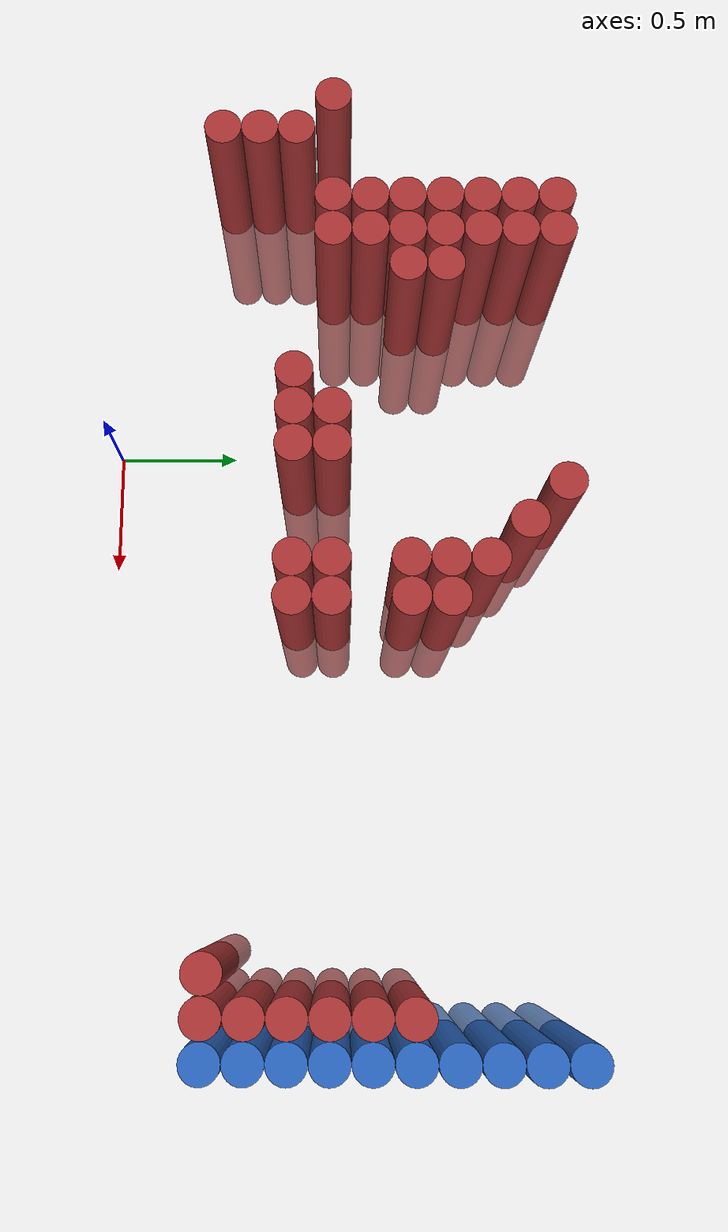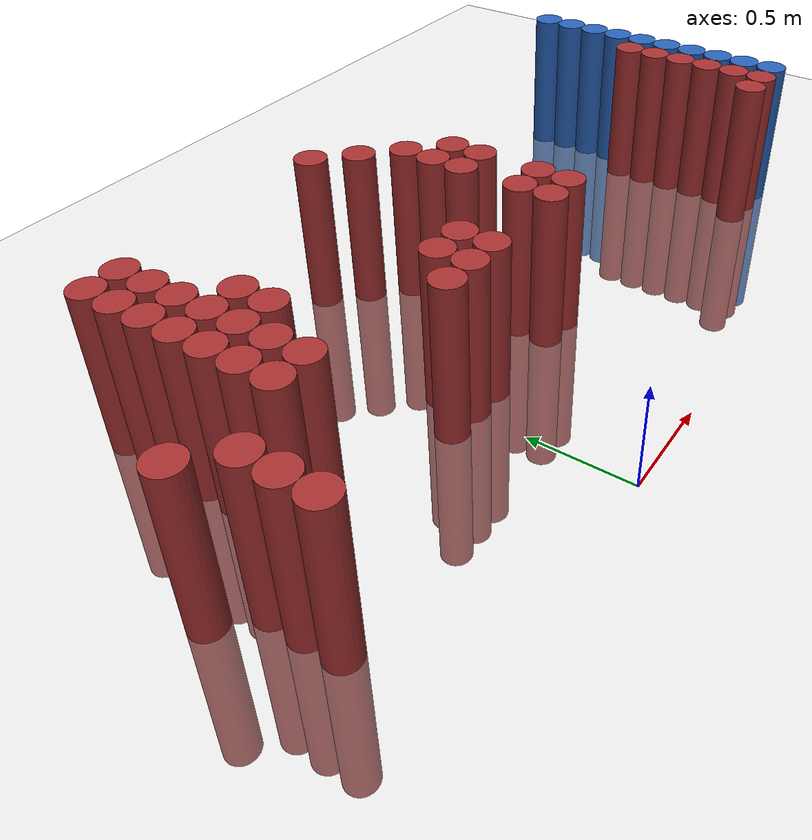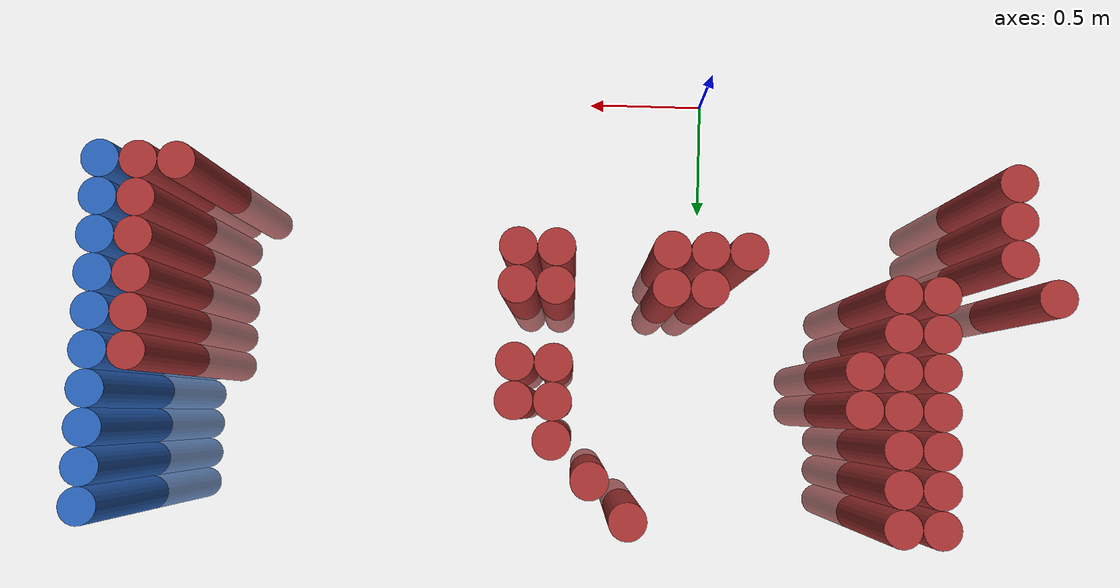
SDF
<sdf version="1.6">
 <world name="default">
  <model name="ground_plane">
   <static>1</static>
   <link name="link">
    <collision name="collision">
     <geometry><plane><normal>0 0 1</normal><size>100 100</size></plane></geometry>
     <surface><friction><ode><mu>100</mu><mu2>50</mu2></ode></friction></surface>
    </collision>
    <visual name="visual">
     <cast_shadows>0</cast_shadows>
     <geometry><plane><normal>0 0 1</normal><size>100 100</size></plane></geometry>
     <material>
      <script><uri>file://media/materials/scripts/gazebo.material</uri><name>Gazebo/Grey</name></script>
     </material>
    </visual>
   </link>
  </model>
  <model name="unit_cylinder_157">
   <static>1</static>
   <pose>-1.325000 0.925000 0.000000 0.000000 0.000000 0.000000</pose>
   <link name="link">
    <inertial>
     <mass>1</mass>
     <inertia><ixx>0.145833</ixx><ixy>0</ixy><ixz>0</ixz><iyy>0.145833</iyy><iyz>0</iyz><izz>0.125</izz></inertia>
    </inertial>
    <collision name="collision">
     <geometry><cylinder><radius>0.075000</radius><length>1.5</length></cylinder></geometry>
    </collision>
    <visual name="visual">
     <geometry><cylinder><radius>0.075000</radius><length>1.5</length></cylinder></geometry>
     <material>
      <ambient>0.648000 0.192000 0.192000 1</ambient>
      <diffuse>0.648000 0.192000 0.192000 1</diffuse>
     </material>
     <material>
      <script><name>Gazebo/Grey</name><uri>file://media/materials/scripts/gazebo.material</uri></script>
     </material>
    </visual>
   </link>
  </model>
  <model name="unit_cylinder_161">
   <static>1</static>
   <pose>-1.175000 0.475000 0.000000 0.000000 0.000000 0.000000</pose>
   <link name="link">
    <inertial>
     <mass>1</mass>
     <inertia><ixx>0.145833</ixx><ixy>0</ixy><ixz>0</ixz><iyy>0.145833</iyy><iyz>0</iyz><izz>0.125</izz></inertia>
    </inertial>
    <collision name="collision">
     <geometry><cylinder><radius>0.075000</radius><length>1.5</length></cylinder></geometry>
    </collision>
    <visual name="visual">
     <geometry><cylinder><radius>0.075000</radius><length>1.5</length></cylinder></geometry>
     <material>
      <ambient>0.648000 0.192000 0.192000 1</ambient>
      <diffuse>0.648000 0.192000 0.192000 1</diffuse>
     </material>
     <material>
      <script><name>Gazebo/Grey</name><uri>file://media/materials/scripts/gazebo.material</uri></script>
     </material>
    </visual>
   </link>
  </model>
  <model name="unit_cylinder_162">
   <static>1</static>
   <pose>-1.175000 0.625000 0.000000 0.000000 0.000000 0.000000</pose>
   <link name="link">
    <inertial>
     <mass>1</mass>
     <inertia><ixx>0.145833</ixx><ixy>0</ixy><ixz>0</ixz><iyy>0.145833</iyy><iyz>0</iyz><izz>0.125</izz></inertia>
    </inertial>
    <collision name="collision">
     <geometry><cylinder><radius>0.075000</radius><length>1.5</length></cylinder></geometry>
    </collision>
    <visual name="visual">
     <geometry><cylinder><radius>0.075000</radius><length>1.5</length></cylinder></geometry>
     <material>
      <ambient>0.648000 0.192000 0.192000 1</ambient>
      <diffuse>0.648000 0.192000 0.192000 1</diffuse>
     </material>
     <material>
      <script><name>Gazebo/Grey</name><uri>file://media/materials/scripts/gazebo.material</uri></script>
     </material>
    </visual>
   </link>
  </model>
  <model name="unit_cylinder_163">
   <static>1</static>
   <pose>-1.175000 0.775000 0.000000 0.000000 0.000000 0.000000</pose>
   <link name="link">
    <inertial>
     <mass>1</mass>
     <inertia><ixx>0.145833</ixx><ixy>0</ixy><ixz>0</ixz><iyy>0.145833</iyy><iyz>0</iyz><izz>0.125</izz></inertia>
    </inertial>
    <collision name="collision">
     <geometry><cylinder><radius>0.075000</radius><length>1.5</length></cylinder></geometry>
    </collision>
    <visual name="visual">
     <geometry><cylinder><radius>0.075000</radius><length>1.5</length></cylinder></geometry>
     <material>
      <ambient>0.648000 0.192000 0.192000 1</ambient>
      <diffuse>0.648000 0.192000 0.192000 1</diffuse>
     </material>
     <material>
      <script><name>Gazebo/Grey</name><uri>file://media/materials/scripts/gazebo.material</uri></script>
     </material>
    </visual>
   </link>
  </model>
  <model name="unit_cylinder_167">
   <static>1</static>
   <pose>-0.875000 0.925000 0.000000 0.000000 0.000000 0.000000</pose>
   <link name="link">
    <inertial>
     <mass>1</mass>
     <inertia><ixx>0.145833</ixx><ixy>0</ixy><ixz>0</ixz><iyy>0.145833</iyy><iyz>0</iyz><izz>0.125</izz></inertia>
    </inertial>
    <collision name="collision">
     <geometry><cylinder><radius>0.075000</radius><length>1.5</length></cylinder></geometry>
    </collision>
    <visual name="visual">
     <geometry><cylinder><radius>0.075000</radius><length>1.5</length></cylinder></geometry>
     <material>
      <ambient>0.648000 0.192000 0.192000 1</ambient>
      <diffuse>0.648000 0.192000 0.192000 1</diffuse>
     </material>
     <material>
      <script><name>Gazebo/Grey</name><uri>file://media/materials/scripts/gazebo.material</uri></script>
     </material>
    </visual>
   </link>
  </model>
  <model name="unit_cylinder_168">
   <static>1</static>
   <pose>-0.875000 1.075000 0.000000 0.000000 0.000000 0.000000</pose>
   <link name="link">
    <inertial>
     <mass>1</mass>
     <inertia><ixx>0.145833</ixx><ixy>0</ixy><ixz>0</ixz><iyy>0.145833</iyy><iyz>0</iyz><izz>0.125</izz></inertia>
    </inertial>
    <collision name="collision">
     <geometry><cylinder><radius>0.075000</radius><length>1.5</length></cylinder></geometry>
    </collision>
    <visual name="visual">
     <geometry><cylinder><radius>0.075000</radius><length>1.5</length></cylinder></geometry>
     <material>
      <ambient>0.648000 0.192000 0.192000 1</ambient>
      <diffuse>0.648000 0.192000 0.192000 1</diffuse>
     </material>
     <material>
      <script><name>Gazebo/Grey</name><uri>file://media/materials/scripts/gazebo.material</uri></script>
     </material>
    </visual>
   </link>
  </model>
  <model name="unit_cylinder_169">
   <static>1</static>
   <pose>-0.875000 1.225000 0.000000 0.000000 0.000000 0.000000</pose>
   <link name="link">
    <inertial>
     <mass>1</mass>
     <inertia><ixx>0.145833</ixx><ixy>0</ixy><ixz>0</ixz><iyy>0.145833</iyy><iyz>0</iyz><izz>0.125</izz></inertia>
    </inertial>
    <collision name="collision">
     <geometry><cylinder><radius>0.075000</radius><length>1.5</length></cylinder></geometry>
    </collision>
    <visual name="visual">
     <geometry><cylinder><radius>0.075000</radius><length>1.5</length></cylinder></geometry>
     <material>
      <ambient>0.648000 0.192000 0.192000 1</ambient>
      <diffuse>0.648000 0.192000 0.192000 1</diffuse>
     </material>
     <material>
      <script><name>Gazebo/Grey</name><uri>file://media/materials/scripts/gazebo.material</uri></script>
     </material>
    </visual>
   </link>
  </model>
  <model name="unit_cylinder_170">
   <static>1</static>
   <pose>-0.875000 1.375000 0.000000 0.000000 0.000000 0.000000</pose>
   <link name="link">
    <inertial>
     <mass>1</mass>
     <inertia><ixx>0.145833</ixx><ixy>0</ixy><ixz>0</ixz><iyy>0.145833</iyy><iyz>0</iyz><izz>0.125</izz></inertia>
    </inertial>
    <collision name="collision">
     <geometry><cylinder><radius>0.075000</radius><length>1.5</length></cylinder></geometry>
    </collision>
    <visual name="visual">
     <geometry><cylinder><radius>0.075000</radius><length>1.5</length></cylinder></geometry>
     <material>
      <ambient>0.648000 0.192000 0.192000 1</ambient>
      <diffuse>0.648000 0.192000 0.192000 1</diffuse>
     </material>
     <material>
      <script><name>Gazebo/Grey</name><uri>file://media/materials/scripts/gazebo.material</uri></script>
     </material>
    </visual>
   </link>
  </model>
  <model name="unit_cylinder_171">
   <static>1</static>
   <pose>-0.875000 1.525000 0.000000 0.000000 0.000000 0.000000</pose>
   <link name="link">
    <inertial>
     <mass>1</mass>
     <inertia><ixx>0.145833</ixx><ixy>0</ixy><ixz>0</ixz><iyy>0.145833</iyy><iyz>0</iyz><izz>0.125</izz></inertia>
    </inertial>
    <collision name="collision">
     <geometry><cylinder><radius>0.075000</radius><length>1.5</length></cylinder></geometry>
    </collision>
    <visual name="visual">
     <geometry><cylinder><radius>0.075000</radius><length>1.5</length></cylinder></geometry>
     <material>
      <ambient>0.648000 0.192000 0.192000 1</ambient>
      <diffuse>0.648000 0.192000 0.192000 1</diffuse>
     </material>
     <material>
      <script><name>Gazebo/Grey</name><uri>file://media/materials/scripts/gazebo.material</uri></script>
     </material>
    </visual>
   </link>
  </model>
  <model name="unit_cylinder_172">
   <static>1</static>
   <pose>-0.875000 1.675000 0.000000 0.000000 0.000000 0.000000</pose>
   <link name="link">
    <inertial>
     <mass>1</mass>
     <inertia><ixx>0.145833</ixx><ixy>0</ixy><ixz>0</ixz><iyy>0.145833</iyy><iyz>0</iyz><izz>0.125</izz></inertia>
    </inertial>
    <collision name="collision">
     <geometry><cylinder><radius>0.075000</radius><length>1.5</length></cylinder></geometry>
    </collision>
    <visual name="visual">
     <geometry><cylinder><radius>0.075000</radius><length>1.5</length></cylinder></geometry>
     <material>
      <ambient>0.648000 0.192000 0.192000 1</ambient>
      <diffuse>0.648000 0.192000 0.192000 1</diffuse>
     </material>
     <material>
      <script><name>Gazebo/Grey</name><uri>file://media/materials/scripts/gazebo.material</uri></script>
     </material>
    </visual>
   </link>
  </model>
  <model name="unit_cylinder_173">
   <static>1</static>
   <pose>-0.875000 1.825000 0.000000 0.000000 0.000000 0.000000</pose>
   <link name="link">
    <inertial>
     <mass>1</mass>
     <inertia><ixx>0.145833</ixx><ixy>0</ixy><ixz>0</ixz><iyy>0.145833</iyy><iyz>0</iyz><izz>0.125</izz></inertia>
    </inertial>
    <collision name="collision">
     <geometry><cylinder><radius>0.075000</radius><length>1.5</length></cylinder></geometry>
    </collision>
    <visual name="visual">
     <geometry><cylinder><radius>0.075000</radius><length>1.5</length></cylinder></geometry>
     <material>
      <ambient>0.648000 0.192000 0.192000 1</ambient>
      <diffuse>0.648000 0.192000 0.192000 1</diffuse>
     </material>
     <material>
      <script><name>Gazebo/Grey</name><uri>file://media/materials/scripts/gazebo.material</uri></script>
     </material>
    </visual>
   </link>
  </model>
  <model name="unit_cylinder_177">
   <static>1</static>
   <pose>-0.725000 0.925000 0.000000 0.000000 0.000000 0.000000</pose>
   <link name="link">
    <inertial>
     <mass>1</mass>
     <inertia><ixx>0.145833</ixx><ixy>0</ixy><ixz>0</ixz><iyy>0.145833</iyy><iyz>0</iyz><izz>0.125</izz></inertia>
    </inertial>
    <collision name="collision">
     <geometry><cylinder><radius>0.075000</radius><length>1.5</length></cylinder></geometry>
    </collision>
    <visual name="visual">
     <geometry><cylinder><radius>0.075000</radius><length>1.5</length></cylinder></geometry>
     <material>
      <ambient>0.648000 0.192000 0.192000 1</ambient>
      <diffuse>0.648000 0.192000 0.192000 1</diffuse>
     </material>
     <material>
      <script><name>Gazebo/Grey</name><uri>file://media/materials/scripts/gazebo.material</uri></script>
     </material>
    </visual>
   </link>
  </model>
  <model name="unit_cylinder_178">
   <static>1</static>
   <pose>-0.725000 1.075000 0.000000 0.000000 0.000000 0.000000</pose>
   <link name="link">
    <inertial>
     <mass>1</mass>
     <inertia><ixx>0.145833</ixx><ixy>0</ixy><ixz>0</ixz><iyy>0.145833</iyy><iyz>0</iyz><izz>0.125</izz></inertia>
    </inertial>
    <collision name="collision">
     <geometry><cylinder><radius>0.075000</radius><length>1.5</length></cylinder></geometry>
    </collision>
    <visual name="visual">
     <geometry><cylinder><radius>0.075000</radius><length>1.5</length></cylinder></geometry>
     <material>
      <ambient>0.648000 0.192000 0.192000 1</ambient>
      <diffuse>0.648000 0.192000 0.192000 1</diffuse>
     </material>
     <material>
      <script><name>Gazebo/Grey</name><uri>file://media/materials/scripts/gazebo.material</uri></script>
     </material>
    </visual>
   </link>
  </model>
  <model name="unit_cylinder_179">
   <static>1</static>
   <pose>-0.725000 1.225000 0.000000 0.000000 0.000000 0.000000</pose>
   <link name="link">
    <inertial>
     <mass>1</mass>
     <inertia><ixx>0.145833</ixx><ixy>0</ixy><ixz>0</ixz><iyy>0.145833</iyy><iyz>0</iyz><izz>0.125</izz></inertia>
    </inertial>
    <collision name="collision">
     <geometry><cylinder><radius>0.075000</radius><length>1.5</length></cylinder></geometry>
    </collision>
    <visual name="visual">
     <geometry><cylinder><radius>0.075000</radius><length>1.5</length></cylinder></geometry>
     <material>
      <ambient>0.648000 0.192000 0.192000 1</ambient>
      <diffuse>0.648000 0.192000 0.192000 1</diffuse>
     </material>
     <material>
      <script><name>Gazebo/Grey</name><uri>file://media/materials/scripts/gazebo.material</uri></script>
     </material>
    </visual>
   </link>
  </model>
  <model name="unit_cylinder_180">
   <static>1</static>
   <pose>-0.725000 1.375000 0.000000 0.000000 0.000000 0.000000</pose>
   <link name="link">
    <inertial>
     <mass>1</mass>
     <inertia><ixx>0.145833</ixx><ixy>0</ixy><ixz>0</ixz><iyy>0.145833</iyy><iyz>0</iyz><izz>0.125</izz></inertia>
    </inertial>
    <collision name="collision">
     <geometry><cylinder><radius>0.075000</radius><length>1.5</length></cylinder></geometry>
    </collision>
    <visual name="visual">
     <geometry><cylinder><radius>0.075000</radius><length>1.5</length></cylinder></geometry>
     <material>
      <ambient>0.648000 0.192000 0.192000 1</ambient>
      <diffuse>0.648000 0.192000 0.192000 1</diffuse>
     </material>
     <material>
      <script><name>Gazebo/Grey</name><uri>file://media/materials/scripts/gazebo.material</uri></script>
     </material>
    </visual>
   </link>
  </model>
  <model name="unit_cylinder_181">
   <static>1</static>
   <pose>-0.725000 1.525000 0.000000 0.000000 0.000000 0.000000</pose>
   <link name="link">
    <inertial>
     <mass>1</mass>
     <inertia><ixx>0.145833</ixx><ixy>0</ixy><ixz>0</ixz><iyy>0.145833</iyy><iyz>0</iyz><izz>0.125</izz></inertia>
    </inertial>
    <collision name="collision">
     <geometry><cylinder><radius>0.075000</radius><length>1.5</length></cylinder></geometry>
    </collision>
    <visual name="visual">
     <geometry><cylinder><radius>0.075000</radius><length>1.5</length></cylinder></geometry>
     <material>
      <ambient>0.648000 0.192000 0.192000 1</ambient>
      <diffuse>0.648000 0.192000 0.192000 1</diffuse>
     </material>
     <material>
      <script><name>Gazebo/Grey</name><uri>file://media/materials/scripts/gazebo.material</uri></script>
     </material>
    </visual>
   </link>
  </model>
  <model name="unit_cylinder_182">
   <static>1</static>
   <pose>-0.725000 1.675000 0.000000 0.000000 0.000000 0.000000</pose>
   <link name="link">
    <inertial>
     <mass>1</mass>
     <inertia><ixx>0.145833</ixx><ixy>0</ixy><ixz>0</ixz><iyy>0.145833</iyy><iyz>0</iyz><izz>0.125</izz></inertia>
    </inertial>
    <collision name="collision">
     <geometry><cylinder><radius>0.075000</radius><length>1.5</length></cylinder></geometry>
    </collision>
    <visual name="visual">
     <geometry><cylinder><radius>0.075000</radius><length>1.5</length></cylinder></geometry>
     <material>
      <ambient>0.648000 0.192000 0.192000 1</ambient>
      <diffuse>0.648000 0.192000 0.192000 1</diffuse>
     </material>
     <material>
      <script><name>Gazebo/Grey</name><uri>file://media/materials/scripts/gazebo.material</uri></script>
     </material>
    </visual>
   </link>
  </model>
  <model name="unit_cylinder_183">
   <static>1</static>
   <pose>-0.725000 1.825000 0.000000 0.000000 0.000000 0.000000</pose>
   <link name="link">
    <inertial>
     <mass>1</mass>
     <inertia><ixx>0.145833</ixx><ixy>0</ixy><ixz>0</ixz><iyy>0.145833</iyy><iyz>0</iyz><izz>0.125</izz></inertia>
    </inertial>
    <collision name="collision">
     <geometry><cylinder><radius>0.075000</radius><length>1.5</length></cylinder></geometry>
    </collision>
    <visual name="visual">
     <geometry><cylinder><radius>0.075000</radius><length>1.5</length></cylinder></geometry>
     <material>
      <ambient>0.648000 0.192000 0.192000 1</ambient>
      <diffuse>0.648000 0.192000 0.192000 1</diffuse>
     </material>
     <material>
      <script><name>Gazebo/Grey</name><uri>file://media/materials/scripts/gazebo.material</uri></script>
     </material>
    </visual>
   </link>
  </model>
  <model name="unit_cylinder_185">
   <static>1</static>
   <pose>-0.575000 1.225000 0.000000 0.000000 0.000000 0.000000</pose>
   <link name="link">
    <inertial>
     <mass>1</mass>
     <inertia><ixx>0.145833</ixx><ixy>0</ixy><ixz>0</ixz><iyy>0.145833</iyy><iyz>0</iyz><izz>0.125</izz></inertia>
    </inertial>
    <collision name="collision">
     <geometry><cylinder><radius>0.075000</radius><length>1.5</length></cylinder></geometry>
    </collision>
    <visual name="visual">
     <geometry><cylinder><radius>0.075000</radius><length>1.5</length></cylinder></geometry>
     <material>
      <ambient>0.648000 0.192000 0.192000 1</ambient>
      <diffuse>0.648000 0.192000 0.192000 1</diffuse>
     </material>
     <material>
      <script><name>Gazebo/Grey</name><uri>file://media/materials/scripts/gazebo.material</uri></script>
     </material>
    </visual>
   </link>
  </model>
  <model name="unit_cylinder_186">
   <static>1</static>
   <pose>-0.575000 1.375000 0.000000 0.000000 0.000000 0.000000</pose>
   <link name="link">
    <inertial>
     <mass>1</mass>
     <inertia><ixx>0.145833</ixx><ixy>0</ixy><ixz>0</ixz><iyy>0.145833</iyy><iyz>0</iyz><izz>0.125</izz></inertia>
    </inertial>
    <collision name="collision">
     <geometry><cylinder><radius>0.075000</radius><length>1.5</length></cylinder></geometry>
    </collision>
    <visual name="visual">
     <geometry><cylinder><radius>0.075000</radius><length>1.5</length></cylinder></geometry>
     <material>
      <ambient>0.648000 0.192000 0.192000 1</ambient>
      <diffuse>0.648000 0.192000 0.192000 1</diffuse>
     </material>
     <material>
      <script><name>Gazebo/Grey</name><uri>file://media/materials/scripts/gazebo.material</uri></script>
     </material>
    </visual>
   </link>
  </model>
  <model name="unit_cylinder_187">
   <static>1</static>
   <pose>-0.125000 0.775000 0.000000 0.000000 0.000000 0.000000</pose>
   <link name="link">
    <inertial>
     <mass>1</mass>
     <inertia><ixx>0.145833</ixx><ixy>0</ixy><ixz>0</ixz><iyy>0.145833</iyy><iyz>0</iyz><izz>0.125</izz></inertia>
    </inertial>
    <collision name="collision">
     <geometry><cylinder><radius>0.075000</radius><length>1.5</length></cylinder></geometry>
    </collision>
    <visual name="visual">
     <geometry><cylinder><radius>0.075000</radius><length>1.5</length></cylinder></geometry>
     <material>
      <ambient>0.648000 0.192000 0.192000 1</ambient>
      <diffuse>0.648000 0.192000 0.192000 1</diffuse>
     </material>
     <material>
      <script><name>Gazebo/Grey</name><uri>file://media/materials/scripts/gazebo.material</uri></script>
     </material>
    </visual>
   </link>
  </model>
  <model name="unit_cylinder_188">
   <static>1</static>
   <pose>0.025000 0.775000 0.000000 0.000000 0.000000 0.000000</pose>
   <link name="link">
    <inertial>
     <mass>1</mass>
     <inertia><ixx>0.145833</ixx><ixy>0</ixy><ixz>0</ixz><iyy>0.145833</iyy><iyz>0</iyz><izz>0.125</izz></inertia>
    </inertial>
    <collision name="collision">
     <geometry><cylinder><radius>0.075000</radius><length>1.5</length></cylinder></geometry>
    </collision>
    <visual name="visual">
     <geometry><cylinder><radius>0.075000</radius><length>1.5</length></cylinder></geometry>
     <material>
      <ambient>0.648000 0.192000 0.192000 1</ambient>
      <diffuse>0.648000 0.192000 0.192000 1</diffuse>
     </material>
     <material>
      <script><name>Gazebo/Grey</name><uri>file://media/materials/scripts/gazebo.material</uri></script>
     </material>
    </visual>
   </link>
  </model>
  <model name="unit_cylinder_189">
   <static>1</static>
   <pose>0.025000 0.925000 0.000000 0.000000 0.000000 0.000000</pose>
   <link name="link">
    <inertial>
     <mass>1</mass>
     <inertia><ixx>0.145833</ixx><ixy>0</ixy><ixz>0</ixz><iyy>0.145833</iyy><iyz>0</iyz><izz>0.125</izz></inertia>
    </inertial>
    <collision name="collision">
     <geometry><cylinder><radius>0.075000</radius><length>1.5</length></cylinder></geometry>
    </collision>
    <visual name="visual">
     <geometry><cylinder><radius>0.075000</radius><length>1.5</length></cylinder></geometry>
     <material>
      <ambient>0.648000 0.192000 0.192000 1</ambient>
      <diffuse>0.648000 0.192000 0.192000 1</diffuse>
     </material>
     <material>
      <script><name>Gazebo/Grey</name><uri>file://media/materials/scripts/gazebo.material</uri></script>
     </material>
    </visual>
   </link>
  </model>
  <model name="unit_cylinder_192">
   <static>1</static>
   <pose>0.175000 0.775000 0.000000 0.000000 0.000000 0.000000</pose>
   <link name="link">
    <inertial>
     <mass>1</mass>
     <inertia><ixx>0.145833</ixx><ixy>0</ixy><ixz>0</ixz><iyy>0.145833</iyy><iyz>0</iyz><izz>0.125</izz></inertia>
    </inertial>
    <collision name="collision">
     <geometry><cylinder><radius>0.075000</radius><length>1.5</length></cylinder></geometry>
    </collision>
    <visual name="visual">
     <geometry><cylinder><radius>0.075000</radius><length>1.5</length></cylinder></geometry>
     <material>
      <ambient>0.648000 0.192000 0.192000 1</ambient>
      <diffuse>0.648000 0.192000 0.192000 1</diffuse>
     </material>
     <material>
      <script><name>Gazebo/Grey</name><uri>file://media/materials/scripts/gazebo.material</uri></script>
     </material>
    </visual>
   </link>
  </model>
  <model name="unit_cylinder_193">
   <static>1</static>
   <pose>0.175000 0.925000 0.000000 0.000000 0.000000 0.000000</pose>
   <link name="link">
    <inertial>
     <mass>1</mass>
     <inertia><ixx>0.145833</ixx><ixy>0</ixy><ixz>0</ixz><iyy>0.145833</iyy><iyz>0</iyz><izz>0.125</izz></inertia>
    </inertial>
    <collision name="collision">
     <geometry><cylinder><radius>0.075000</radius><length>1.5</length></cylinder></geometry>
    </collision>
    <visual name="visual">
     <geometry><cylinder><radius>0.075000</radius><length>1.5</length></cylinder></geometry>
     <material>
      <ambient>0.648000 0.192000 0.192000 1</ambient>
      <diffuse>0.648000 0.192000 0.192000 1</diffuse>
     </material>
     <material>
      <script><name>Gazebo/Grey</name><uri>file://media/materials/scripts/gazebo.material</uri></script>
     </material>
    </visual>
   </link>
  </model>
  <model name="unit_cylinder_195">
   <static>1</static>
   <pose>0.325000 1.825000 0.000000 0.000000 0.000000 0.000000</pose>
   <link name="link">
    <inertial>
     <mass>1</mass>
     <inertia><ixx>0.145833</ixx><ixy>0</ixy><ixz>0</ixz><iyy>0.145833</iyy><iyz>0</iyz><izz>0.125</izz></inertia>
    </inertial>
    <collision name="collision">
     <geometry><cylinder><radius>0.075000</radius><length>1.5</length></cylinder></geometry>
    </collision>
    <visual name="visual">
     <geometry><cylinder><radius>0.075000</radius><length>1.5</length></cylinder></geometry>
     <material>
      <ambient>0.648000 0.192000 0.192000 1</ambient>
      <diffuse>0.648000 0.192000 0.192000 1</diffuse>
     </material>
     <material>
      <script><name>Gazebo/Grey</name><uri>file://media/materials/scripts/gazebo.material</uri></script>
     </material>
    </visual>
   </link>
  </model>
  <model name="unit_cylinder_196">
   <static>1</static>
   <pose>0.475000 1.675000 0.000000 0.000000 0.000000 0.000000</pose>
   <link name="link">
    <inertial>
     <mass>1</mass>
     <inertia><ixx>0.145833</ixx><ixy>0</ixy><ixz>0</ixz><iyy>0.145833</iyy><iyz>0</iyz><izz>0.125</izz></inertia>
    </inertial>
    <collision name="collision">
     <geometry><cylinder><radius>0.075000</radius><length>1.5</length></cylinder></geometry>
    </collision>
    <visual name="visual">
     <geometry><cylinder><radius>0.075000</radius><length>1.5</length></cylinder></geometry>
     <material>
      <ambient>0.648000 0.192000 0.192000 1</ambient>
      <diffuse>0.648000 0.192000 0.192000 1</diffuse>
     </material>
     <material>
      <script><name>Gazebo/Grey</name><uri>file://media/materials/scripts/gazebo.material</uri></script>
     </material>
    </visual>
   </link>
  </model>
  <model name="unit_cylinder_197">
   <static>1</static>
   <pose>0.625000 0.775000 0.000000 0.000000 0.000000 0.000000</pose>
   <link name="link">
    <inertial>
     <mass>1</mass>
     <inertia><ixx>0.145833</ixx><ixy>0</ixy><ixz>0</ixz><iyy>0.145833</iyy><iyz>0</iyz><izz>0.125</izz></inertia>
    </inertial>
    <collision name="collision">
     <geometry><cylinder><radius>0.075000</radius><length>1.5</length></cylinder></geometry>
    </collision>
    <visual name="visual">
     <geometry><cylinder><radius>0.075000</radius><length>1.5</length></cylinder></geometry>
     <material>
      <ambient>0.648000 0.192000 0.192000 1</ambient>
      <diffuse>0.648000 0.192000 0.192000 1</diffuse>
     </material>
     <material>
      <script><name>Gazebo/Grey</name><uri>file://media/materials/scripts/gazebo.material</uri></script>
     </material>
    </visual>
   </link>
  </model>
  <model name="unit_cylinder_198">
   <static>1</static>
   <pose>0.625000 0.925000 0.000000 0.000000 0.000000 0.000000</pose>
   <link name="link">
    <inertial>
     <mass>1</mass>
     <inertia><ixx>0.145833</ixx><ixy>0</ixy><ixz>0</ixz><iyy>0.145833</iyy><iyz>0</iyz><izz>0.125</izz></inertia>
    </inertial>
    <collision name="collision">
     <geometry><cylinder><radius>0.075000</radius><length>1.5</length></cylinder></geometry>
    </collision>
    <visual name="visual">
     <geometry><cylinder><radius>0.075000</radius><length>1.5</length></cylinder></geometry>
     <material>
      <ambient>0.648000 0.192000 0.192000 1</ambient>
      <diffuse>0.648000 0.192000 0.192000 1</diffuse>
     </material>
     <material>
      <script><name>Gazebo/Grey</name><uri>file://media/materials/scripts/gazebo.material</uri></script>
     </material>
    </visual>
   </link>
  </model>
  <model name="unit_cylinder_199">
   <static>1</static>
   <pose>0.625000 1.225000 0.000000 0.000000 0.000000 0.000000</pose>
   <link name="link">
    <inertial>
     <mass>1</mass>
     <inertia><ixx>0.145833</ixx><ixy>0</ixy><ixz>0</ixz><iyy>0.145833</iyy><iyz>0</iyz><izz>0.125</izz></inertia>
    </inertial>
    <collision name="collision">
     <geometry><cylinder><radius>0.075000</radius><length>1.5</length></cylinder></geometry>
    </collision>
    <visual name="visual">
     <geometry><cylinder><radius>0.075000</radius><length>1.5</length></cylinder></geometry>
     <material>
      <ambient>0.648000 0.192000 0.192000 1</ambient>
      <diffuse>0.648000 0.192000 0.192000 1</diffuse>
     </material>
     <material>
      <script><name>Gazebo/Grey</name><uri>file://media/materials/scripts/gazebo.material</uri></script>
     </material>
    </visual>
   </link>
  </model>
  <model name="unit_cylinder_200">
   <static>1</static>
   <pose>0.625000 1.375000 0.000000 0.000000 0.000000 0.000000</pose>
   <link name="link">
    <inertial>
     <mass>1</mass>
     <inertia><ixx>0.145833</ixx><ixy>0</ixy><ixz>0</ixz><iyy>0.145833</iyy><iyz>0</iyz><izz>0.125</izz></inertia>
    </inertial>
    <collision name="collision">
     <geometry><cylinder><radius>0.075000</radius><length>1.5</length></cylinder></geometry>
    </collision>
    <visual name="visual">
     <geometry><cylinder><radius>0.075000</radius><length>1.5</length></cylinder></geometry>
     <material>
      <ambient>0.648000 0.192000 0.192000 1</ambient>
      <diffuse>0.648000 0.192000 0.192000 1</diffuse>
     </material>
     <material>
      <script><name>Gazebo/Grey</name><uri>file://media/materials/scripts/gazebo.material</uri></script>
     </material>
    </visual>
   </link>
  </model>
  <model name="unit_cylinder_201">
   <static>1</static>
   <pose>0.625000 1.525000 0.000000 0.000000 0.000000 0.000000</pose>
   <link name="link">
    <inertial>
     <mass>1</mass>
     <inertia><ixx>0.145833</ixx><ixy>0</ixy><ixz>0</ixz><iyy>0.145833</iyy><iyz>0</iyz><izz>0.125</izz></inertia>
    </inertial>
    <collision name="collision">
     <geometry><cylinder><radius>0.075000</radius><length>1.5</length></cylinder></geometry>
    </collision>
    <visual name="visual">
     <geometry><cylinder><radius>0.075000</radius><length>1.5</length></cylinder></geometry>
     <material>
      <ambient>0.648000 0.192000 0.192000 1</ambient>
      <diffuse>0.648000 0.192000 0.192000 1</diffuse>
     </material>
     <material>
      <script><name>Gazebo/Grey</name><uri>file://media/materials/scripts/gazebo.material</uri></script>
     </material>
    </visual>
   </link>
  </model>
  <model name="unit_cylinder_202">
   <static>1</static>
   <pose>0.775000 0.775000 0.000000 0.000000 0.000000 0.000000</pose>
   <link name="link">
    <inertial>
     <mass>1</mass>
     <inertia><ixx>0.145833</ixx><ixy>0</ixy><ixz>0</ixz><iyy>0.145833</iyy><iyz>0</iyz><izz>0.125</izz></inertia>
    </inertial>
    <collision name="collision">
     <geometry><cylinder><radius>0.075000</radius><length>1.5</length></cylinder></geometry>
    </collision>
    <visual name="visual">
     <geometry><cylinder><radius>0.075000</radius><length>1.5</length></cylinder></geometry>
     <material>
      <ambient>0.648000 0.192000 0.192000 1</ambient>
      <diffuse>0.648000 0.192000 0.192000 1</diffuse>
     </material>
     <material>
      <script><name>Gazebo/Grey</name><uri>file://media/materials/scripts/gazebo.material</uri></script>
     </material>
    </visual>
   </link>
  </model>
  <model name="unit_cylinder_203">
   <static>1</static>
   <pose>0.775000 0.925000 0.000000 0.000000 0.000000 0.000000</pose>
   <link name="link">
    <inertial>
     <mass>1</mass>
     <inertia><ixx>0.145833</ixx><ixy>0</ixy><ixz>0</ixz><iyy>0.145833</iyy><iyz>0</iyz><izz>0.125</izz></inertia>
    </inertial>
    <collision name="collision">
     <geometry><cylinder><radius>0.075000</radius><length>1.5</length></cylinder></geometry>
    </collision>
    <visual name="visual">
     <geometry><cylinder><radius>0.075000</radius><length>1.5</length></cylinder></geometry>
     <material>
      <ambient>0.648000 0.192000 0.192000 1</ambient>
      <diffuse>0.648000 0.192000 0.192000 1</diffuse>
     </material>
     <material>
      <script><name>Gazebo/Grey</name><uri>file://media/materials/scripts/gazebo.material</uri></script>
     </material>
    </visual>
   </link>
  </model>
  <model name="unit_cylinder_204">
   <static>1</static>
   <pose>0.775000 1.225000 0.000000 0.000000 0.000000 0.000000</pose>
   <link name="link">
    <inertial>
     <mass>1</mass>
     <inertia><ixx>0.145833</ixx><ixy>0</ixy><ixz>0</ixz><iyy>0.145833</iyy><iyz>0</iyz><izz>0.125</izz></inertia>
    </inertial>
    <collision name="collision">
     <geometry><cylinder><radius>0.075000</radius><length>1.5</length></cylinder></geometry>
    </collision>
    <visual name="visual">
     <geometry><cylinder><radius>0.075000</radius><length>1.5</length></cylinder></geometry>
     <material>
      <ambient>0.648000 0.192000 0.192000 1</ambient>
      <diffuse>0.648000 0.192000 0.192000 1</diffuse>
     </material>
     <material>
      <script><name>Gazebo/Grey</name><uri>file://media/materials/scripts/gazebo.material</uri></script>
     </material>
    </visual>
   </link>
  </model>
  <model name="unit_cylinder_205">
   <static>1</static>
   <pose>0.775000 1.375000 0.000000 0.000000 0.000000 0.000000</pose>
   <link name="link">
    <inertial>
     <mass>1</mass>
     <inertia><ixx>0.145833</ixx><ixy>0</ixy><ixz>0</ixz><iyy>0.145833</iyy><iyz>0</iyz><izz>0.125</izz></inertia>
    </inertial>
    <collision name="collision">
     <geometry><cylinder><radius>0.075000</radius><length>1.5</length></cylinder></geometry>
    </collision>
    <visual name="visual">
     <geometry><cylinder><radius>0.075000</radius><length>1.5</length></cylinder></geometry>
     <material>
      <ambient>0.648000 0.192000 0.192000 1</ambient>
      <diffuse>0.648000 0.192000 0.192000 1</diffuse>
     </material>
     <material>
      <script><name>Gazebo/Grey</name><uri>file://media/materials/scripts/gazebo.material</uri></script>
     </material>
    </visual>
   </link>
  </model>
  <model name="unit_cylinder_217">
   <static>1</static>
   <pose>2.125000 0.475000 0.000000 0.000000 0.000000 0.000000</pose>
   <link name="link">
    <inertial>
     <mass>1</mass>
     <inertia><ixx>0.145833</ixx><ixy>0</ixy><ixz>0</ixz><iyy>0.145833</iyy><iyz>0</iyz><izz>0.125</izz></inertia>
    </inertial>
    <collision name="collision">
     <geometry><cylinder><radius>0.075000</radius><length>1.5</length></cylinder></geometry>
    </collision>
    <visual name="visual">
     <geometry><cylinder><radius>0.075000</radius><length>1.5</length></cylinder></geometry>
     <material>
      <ambient>0.648000 0.192000 0.192000 1</ambient>
      <diffuse>0.648000 0.192000 0.192000 1</diffuse>
     </material>
     <material>
      <script><name>Gazebo/Grey</name><uri>file://media/materials/scripts/gazebo.material</uri></script>
     </material>
    </visual>
   </link>
  </model>
  <model name="unit_cylinder_222">
   <static>1</static>
   <pose>2.275000 0.475000 0.000000 0.000000 0.000000 0.000000</pose>
   <link name="link">
    <inertial>
     <mass>1</mass>
     <inertia><ixx>0.145833</ixx><ixy>0</ixy><ixz>0</ixz><iyy>0.145833</iyy><iyz>0</iyz><izz>0.125</izz></inertia>
    </inertial>
    <collision name="collision">
     <geometry><cylinder><radius>0.075000</radius><length>1.5</length></cylinder></geometry>
    </collision>
    <visual name="visual">
     <geometry><cylinder><radius>0.075000</radius><length>1.5</length></cylinder></geometry>
     <material>
      <ambient>0.648000 0.192000 0.192000 1</ambient>
      <diffuse>0.648000 0.192000 0.192000 1</diffuse>
     </material>
     <material>
      <script><name>Gazebo/Grey</name><uri>file://media/materials/scripts/gazebo.material</uri></script>
     </material>
    </visual>
   </link>
  </model>
  <model name="unit_cylinder_223">
   <static>1</static>
   <pose>2.275000 0.625000 0.000000 0.000000 0.000000 0.000000</pose>
   <link name="link">
    <inertial>
     <mass>1</mass>
     <inertia><ixx>0.145833</ixx><ixy>0</ixy><ixz>0</ixz><iyy>0.145833</iyy><iyz>0</iyz><izz>0.125</izz></inertia>
    </inertial>
    <collision name="collision">
     <geometry><cylinder><radius>0.075000</radius><length>1.5</length></cylinder></geometry>
    </collision>
    <visual name="visual">
     <geometry><cylinder><radius>0.075000</radius><length>1.5</length></cylinder></geometry>
     <material>
      <ambient>0.648000 0.192000 0.192000 1</ambient>
      <diffuse>0.648000 0.192000 0.192000 1</diffuse>
     </material>
     <material>
      <script><name>Gazebo/Grey</name><uri>file://media/materials/scripts/gazebo.material</uri></script>
     </material>
    </visual>
   </link>
  </model>
  <model name="unit_cylinder_224">
   <static>1</static>
   <pose>2.275000 0.775000 0.000000 0.000000 0.000000 0.000000</pose>
   <link name="link">
    <inertial>
     <mass>1</mass>
     <inertia><ixx>0.145833</ixx><ixy>0</ixy><ixz>0</ixz><iyy>0.145833</iyy><iyz>0</iyz><izz>0.125</izz></inertia>
    </inertial>
    <collision name="collision">
     <geometry><cylinder><radius>0.075000</radius><length>1.5</length></cylinder></geometry>
    </collision>
    <visual name="visual">
     <geometry><cylinder><radius>0.075000</radius><length>1.5</length></cylinder></geometry>
     <material>
      <ambient>0.648000 0.192000 0.192000 1</ambient>
      <diffuse>0.648000 0.192000 0.192000 1</diffuse>
     </material>
     <material>
      <script><name>Gazebo/Grey</name><uri>file://media/materials/scripts/gazebo.material</uri></script>
     </material>
    </visual>
   </link>
  </model>
  <model name="unit_cylinder_225">
   <static>1</static>
   <pose>2.275000 0.925000 0.000000 0.000000 0.000000 0.000000</pose>
   <link name="link">
    <inertial>
     <mass>1</mass>
     <inertia><ixx>0.145833</ixx><ixy>0</ixy><ixz>0</ixz><iyy>0.145833</iyy><iyz>0</iyz><izz>0.125</izz></inertia>
    </inertial>
    <collision name="collision">
     <geometry><cylinder><radius>0.075000</radius><length>1.5</length></cylinder></geometry>
    </collision>
    <visual name="visual">
     <geometry><cylinder><radius>0.075000</radius><length>1.5</length></cylinder></geometry>
     <material>
      <ambient>0.648000 0.192000 0.192000 1</ambient>
      <diffuse>0.648000 0.192000 0.192000 1</diffuse>
     </material>
     <material>
      <script><name>Gazebo/Grey</name><uri>file://media/materials/scripts/gazebo.material</uri></script>
     </material>
    </visual>
   </link>
  </model>
  <model name="unit_cylinder_226">
   <static>1</static>
   <pose>2.275000 1.075000 0.000000 0.000000 0.000000 0.000000</pose>
   <link name="link">
    <inertial>
     <mass>1</mass>
     <inertia><ixx>0.145833</ixx><ixy>0</ixy><ixz>0</ixz><iyy>0.145833</iyy><iyz>0</iyz><izz>0.125</izz></inertia>
    </inertial>
    <collision name="collision">
     <geometry><cylinder><radius>0.075000</radius><length>1.5</length></cylinder></geometry>
    </collision>
    <visual name="visual">
     <geometry><cylinder><radius>0.075000</radius><length>1.5</length></cylinder></geometry>
     <material>
      <ambient>0.648000 0.192000 0.192000 1</ambient>
      <diffuse>0.648000 0.192000 0.192000 1</diffuse>
     </material>
     <material>
      <script><name>Gazebo/Grey</name><uri>file://media/materials/scripts/gazebo.material</uri></script>
     </material>
    </visual>
   </link>
  </model>
  <model name="unit_cylinder_227">
   <static>1</static>
   <pose>2.275000 1.225000 0.000000 0.000000 0.000000 0.000000</pose>
   <link name="link">
    <inertial>
     <mass>1</mass>
     <inertia><ixx>0.145833</ixx><ixy>0</ixy><ixz>0</ixz><iyy>0.145833</iyy><iyz>0</iyz><izz>0.125</izz></inertia>
    </inertial>
    <collision name="collision">
     <geometry><cylinder><radius>0.075000</radius><length>1.5</length></cylinder></geometry>
    </collision>
    <visual name="visual">
     <geometry><cylinder><radius>0.075000</radius><length>1.5</length></cylinder></geometry>
     <material>
      <ambient>0.648000 0.192000 0.192000 1</ambient>
      <diffuse>0.648000 0.192000 0.192000 1</diffuse>
     </material>
     <material>
      <script><name>Gazebo/Grey</name><uri>file://media/materials/scripts/gazebo.material</uri></script>
     </material>
    </visual>
   </link>
  </model>
  <model name="unit_cylinder_239">
   <static>1</static>
   <pose>2.425000 0.475000 0.000000 0.000000 0.000000 0.000000</pose>
   <link name="link">
    <inertial>
     <mass>1</mass>
     <inertia><ixx>0.145833</ixx><ixy>0</ixy><ixz>0</ixz><iyy>0.145833</iyy><iyz>0</iyz><izz>0.125</izz></inertia>
    </inertial>
    <collision name="collision">
     <geometry><cylinder><radius>0.075000</radius><length>1.5</length></cylinder></geometry>
    </collision>
    <visual name="visual">
     <geometry><cylinder><radius>0.075000</radius><length>1.5</length></cylinder></geometry>
     <material>
      <ambient>0.152000 0.379000 0.720000 1</ambient>
      <diffuse>0.152000 0.379000 0.720000 1</diffuse>
     </material>
     <material>
      <script><name>Gazebo/Grey</name><uri>file://media/materials/scripts/gazebo.material</uri></script>
     </material>
    </visual>
   </link>
  </model>
  <model name="unit_cylinder_240">
   <static>1</static>
   <pose>2.425000 0.625000 0.000000 0.000000 0.000000 0.000000</pose>
   <link name="link">
    <inertial>
     <mass>1</mass>
     <inertia><ixx>0.145833</ixx><ixy>0</ixy><ixz>0</ixz><iyy>0.145833</iyy><iyz>0</iyz><izz>0.125</izz></inertia>
    </inertial>
    <collision name="collision">
     <geometry><cylinder><radius>0.075000</radius><length>1.5</length></cylinder></geometry>
    </collision>
    <visual name="visual">
     <geometry><cylinder><radius>0.075000</radius><length>1.5</length></cylinder></geometry>
     <material>
      <ambient>0.152000 0.379000 0.720000 1</ambient>
      <diffuse>0.152000 0.379000 0.720000 1</diffuse>
     </material>
     <material>
      <script><name>Gazebo/Grey</name><uri>file://media/materials/scripts/gazebo.material</uri></script>
     </material>
    </visual>
   </link>
  </model>
  <model name="unit_cylinder_241">
   <static>1</static>
   <pose>2.425000 0.775000 0.000000 0.000000 0.000000 0.000000</pose>
   <link name="link">
    <inertial>
     <mass>1</mass>
     <inertia><ixx>0.145833</ixx><ixy>0</ixy><ixz>0</ixz><iyy>0.145833</iyy><iyz>0</iyz><izz>0.125</izz></inertia>
    </inertial>
    <collision name="collision">
     <geometry><cylinder><radius>0.075000</radius><length>1.5</length></cylinder></geometry>
    </collision>
    <visual name="visual">
     <geometry><cylinder><radius>0.075000</radius><length>1.5</length></cylinder></geometry>
     <material>
      <ambient>0.152000 0.379000 0.720000 1</ambient>
      <diffuse>0.152000 0.379000 0.720000 1</diffuse>
     </material>
     <material>
      <script><name>Gazebo/Grey</name><uri>file://media/materials/scripts/gazebo.material</uri></script>
     </material>
    </visual>
   </link>
  </model>
  <model name="unit_cylinder_242">
   <static>1</static>
   <pose>2.425000 0.925000 0.000000 0.000000 0.000000 0.000000</pose>
   <link name="link">
    <inertial>
     <mass>1</mass>
     <inertia><ixx>0.145833</ixx><ixy>0</ixy><ixz>0</ixz><iyy>0.145833</iyy><iyz>0</iyz><izz>0.125</izz></inertia>
    </inertial>
    <collision name="collision">
     <geometry><cylinder><radius>0.075000</radius><length>1.5</length></cylinder></geometry>
    </collision>
    <visual name="visual">
     <geometry><cylinder><radius>0.075000</radius><length>1.5</length></cylinder></geometry>
     <material>
      <ambient>0.152000 0.379000 0.720000 1</ambient>
      <diffuse>0.152000 0.379000 0.720000 1</diffuse>
     </material>
     <material>
      <script><name>Gazebo/Grey</name><uri>file://media/materials/scripts/gazebo.material</uri></script>
     </material>
    </visual>
   </link>
  </model>
  <model name="unit_cylinder_243">
   <static>1</static>
   <pose>2.425000 1.075000 0.000000 0.000000 0.000000 0.000000</pose>
   <link name="link">
    <inertial>
     <mass>1</mass>
     <inertia><ixx>0.145833</ixx><ixy>0</ixy><ixz>0</ixz><iyy>0.145833</iyy><iyz>0</iyz><izz>0.125</izz></inertia>
    </inertial>
    <collision name="collision">
     <geometry><cylinder><radius>0.075000</radius><length>1.5</length></cylinder></geometry>
    </collision>
    <visual name="visual">
     <geometry><cylinder><radius>0.075000</radius><length>1.5</length></cylinder></geometry>
     <material>
      <ambient>0.152000 0.379000 0.720000 1</ambient>
      <diffuse>0.152000 0.379000 0.720000 1</diffuse>
     </material>
     <material>
      <script><name>Gazebo/Grey</name><uri>file://media/materials/scripts/gazebo.material</uri></script>
     </material>
    </visual>
   </link>
  </model>
  <model name="unit_cylinder_244">
   <static>1</static>
   <pose>2.425000 1.225000 0.000000 0.000000 0.000000 0.000000</pose>
   <link name="link">
    <inertial>
     <mass>1</mass>
     <inertia><ixx>0.145833</ixx><ixy>0</ixy><ixz>0</ixz><iyy>0.145833</iyy><iyz>0</iyz><izz>0.125</izz></inertia>
    </inertial>
    <collision name="collision">
     <geometry><cylinder><radius>0.075000</radius><length>1.5</length></cylinder></geometry>
    </collision>
    <visual name="visual">
     <geometry><cylinder><radius>0.075000</radius><length>1.5</length></cylinder></geometry>
     <material>
      <ambient>0.152000 0.379000 0.720000 1</ambient>
      <diffuse>0.152000 0.379000 0.720000 1</diffuse>
     </material>
     <material>
      <script><name>Gazebo/Grey</name><uri>file://media/materials/scripts/gazebo.material</uri></script>
     </material>
    </visual>
   </link>
  </model>
  <model name="unit_cylinder_245">
   <static>1</static>
   <pose>2.425000 1.375000 0.000000 0.000000 0.000000 0.000000</pose>
   <link name="link">
    <inertial>
     <mass>1</mass>
     <inertia><ixx>0.145833</ixx><ixy>0</ixy><ixz>0</ixz><iyy>0.145833</iyy><iyz>0</iyz><izz>0.125</izz></inertia>
    </inertial>
    <collision name="collision">
     <geometry><cylinder><radius>0.075000</radius><length>1.5</length></cylinder></geometry>
    </collision>
    <visual name="visual">
     <geometry><cylinder><radius>0.075000</radius><length>1.5</length></cylinder></geometry>
     <material>
      <ambient>0.152000 0.379000 0.720000 1</ambient>
      <diffuse>0.152000 0.379000 0.720000 1</diffuse>
     </material>
     <material>
      <script><name>Gazebo/Grey</name><uri>file://media/materials/scripts/gazebo.material</uri></script>
     </material>
    </visual>
   </link>
  </model>
  <model name="unit_cylinder_246">
   <static>1</static>
   <pose>2.425000 1.525000 0.000000 0.000000 0.000000 0.000000</pose>
   <link name="link">
    <inertial>
     <mass>1</mass>
     <inertia><ixx>0.145833</ixx><ixy>0</ixy><ixz>0</ixz><iyy>0.145833</iyy><iyz>0</iyz><izz>0.125</izz></inertia>
    </inertial>
    <collision name="collision">
     <geometry><cylinder><radius>0.075000</radius><length>1.5</length></cylinder></geometry>
    </collision>
    <visual name="visual">
     <geometry><cylinder><radius>0.075000</radius><length>1.5</length></cylinder></geometry>
     <material>
      <ambient>0.152000 0.379000 0.720000 1</ambient>
      <diffuse>0.152000 0.379000 0.720000 1</diffuse>
     </material>
     <material>
      <script><name>Gazebo/Grey</name><uri>file://media/materials/scripts/gazebo.material</uri></script>
     </material>
    </visual>
   </link>
  </model>
  <model name="unit_cylinder_247">
   <static>1</static>
   <pose>2.425000 1.675000 0.000000 0.000000 0.000000 0.000000</pose>
   <link name="link">
    <inertial>
     <mass>1</mass>
     <inertia><ixx>0.145833</ixx><ixy>0</ixy><ixz>0</ixz><iyy>0.145833</iyy><iyz>0</iyz><izz>0.125</izz></inertia>
    </inertial>
    <collision name="collision">
     <geometry><cylinder><radius>0.075000</radius><length>1.5</length></cylinder></geometry>
    </collision>
    <visual name="visual">
     <geometry><cylinder><radius>0.075000</radius><length>1.5</length></cylinder></geometry>
     <material>
      <ambient>0.152000 0.379000 0.720000 1</ambient>
      <diffuse>0.152000 0.379000 0.720000 1</diffuse>
     </material>
     <material>
      <script><name>Gazebo/Grey</name><uri>file://media/materials/scripts/gazebo.material</uri></script>
     </material>
    </visual>
   </link>
  </model>
  <model name="unit_cylinder_248">
   <static>1</static>
   <pose>2.425000 1.825000 0.000000 0.000000 0.000000 0.000000</pose>
   <link name="link">
    <inertial>
     <mass>1</mass>
     <inertia><ixx>0.145833</ixx><ixy>0</ixy><ixz>0</ixz><iyy>0.145833</iyy><iyz>0</iyz><izz>0.125</izz></inertia>
    </inertial>
    <collision name="collision">
     <geometry><cylinder><radius>0.075000</radius><length>1.5</length></cylinder></geometry>
    </collision>
    <visual name="visual">
     <geometry><cylinder><radius>0.075000</radius><length>1.5</length></cylinder></geometry>
     <material>
      <ambient>0.152000 0.379000 0.720000 1</ambient>
      <diffuse>0.152000 0.379000 0.720000 1</diffuse>
     </material>
     <material>
      <script><name>Gazebo/Grey</name><uri>file://media/materials/scripts/gazebo.material</uri></script>
     </material>
    </visual>
   </link>
  </model>
 </world>
</sdf>
